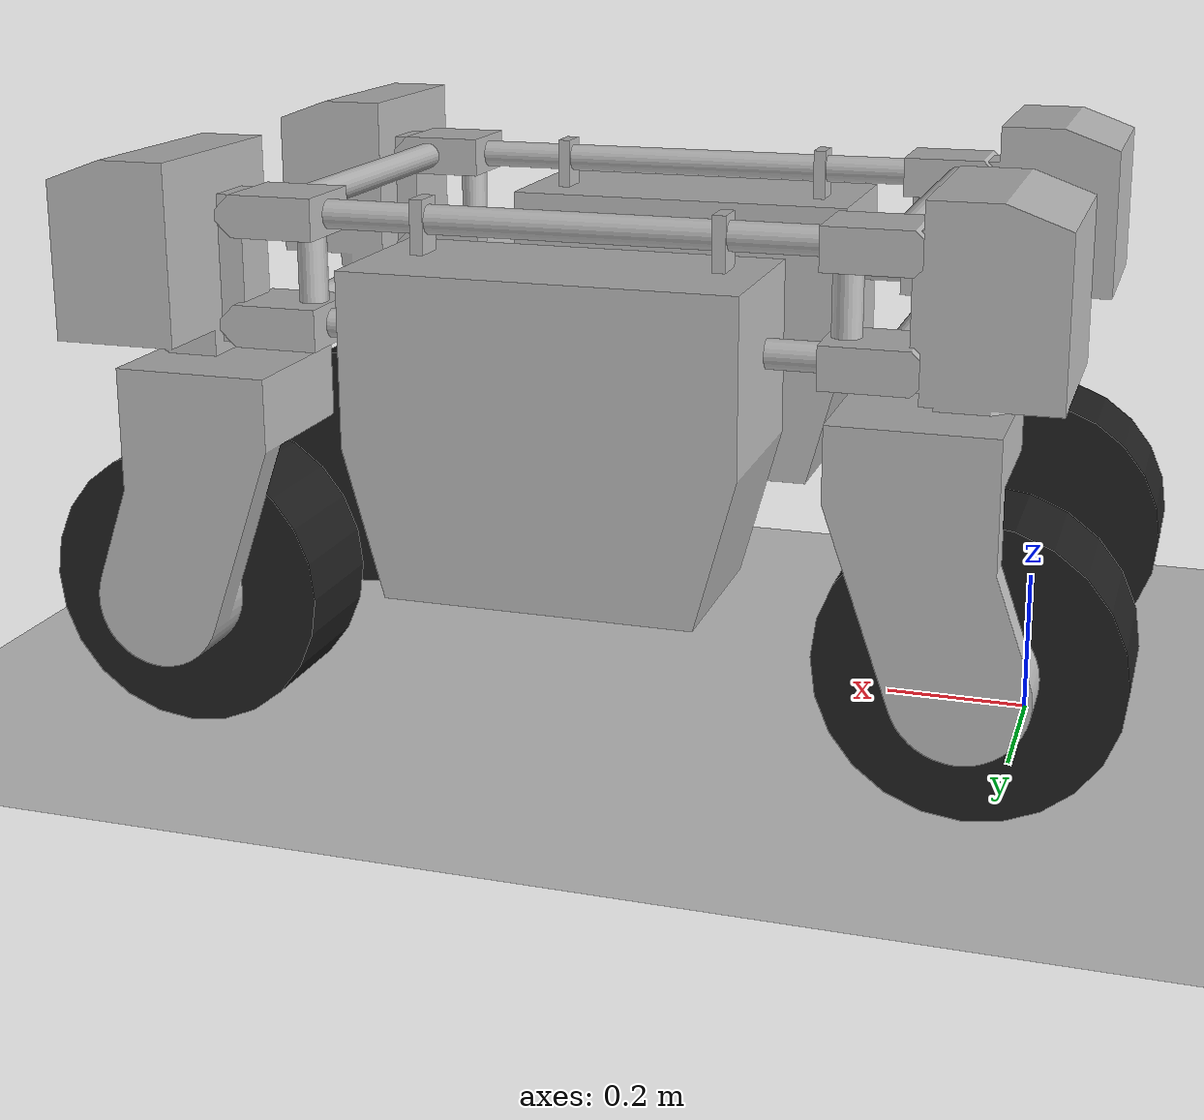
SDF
<sdf version="1.6">
 <world name="default">
  <light name="sun" type="directional">
   <pose>0 0 10 0 -0 0</pose>
   <diffuse>0.8 0.8 0.8 1</diffuse>
   <specular>0.1 0.1 0.1 1</specular>
   <attenuation>
    <range>1000</range>
    <constant>0.9</constant>
    <linear>0.01</linear>
    <quadratic>0.001</quadratic>
   </attenuation>
   <direction>-0.5 0.5 -1</direction>
  </light>
  <model name="ground_plane">
   <static>1</static>
   <link name="link">
    <collision name="collision">
     <geometry><plane><normal>0 0 1</normal><size>100 100</size></plane></geometry>
     <surface><friction><ode><mu>100</mu><mu2>50</mu2></ode></friction></surface>
    </collision>
    <visual name="visual">
     <cast_shadows>0</cast_shadows>
     <geometry><plane><normal>0 0 1</normal><size>100 100</size></plane></geometry>
     <material>
      <script><uri>file://media/materials/scripts/gazebo.material</uri><name>Gazebo/Grey</name></script>
     </material>
    </visual>
   </link>
  </model>
  <gravity>0 0 -9.8</gravity>
  <magnetic_field>6e-06 2.3e-05 -4.2e-05</magnetic_field>
  <atmosphere type="adiabatic"/>
  <physics name="default_physics" default="0" type="ode">
   <max_step_size>0.001</max_step_size>
   <real_time_factor>1</real_time_factor>
   <real_time_update_rate>1000</real_time_update_rate>
  </physics>
  <scene><ambient>0.4 0.4 0.4 1</ambient><background>0.7 0.7 0.7 1</background><shadows>1</shadows></scene>
  <spherical_coordinates>
   <surface_model>EARTH_WGS84</surface_model>
   <latitude_deg>0</latitude_deg>
   <longitude_deg>0</longitude_deg>
   <elevation>0</elevation>
   <heading_deg>0</heading_deg>
  </spherical_coordinates>
  <model name="thorvald_ii">
   <link name="base_link">
    <inertial>
     <pose>-0 0 0.521429 0 -0 0</pose>
     <mass>84</mass>
     <inertia>
      <ixx>33.8454</ixx>
      <ixy>1.9984e-14</ixy>
      <ixz>-1.73671e-16</ixz>
      <iyy>30.5515</iyy>
      <iyz>-5.86634e-15</iyz>
      <izz>37.106</izz>
     </inertia>
    </inertial>
    <collision name="base_link_fixed_joint_lump__top0_collision">
     <pose>-0.547 -0.3 0.65 0 -0 -3.14159</pose>
     <geometry>
      <mesh>
       <scale>1 1 1</scale>
       <uri>/home/vignesh/Thorvald/src/thorvald_model/meshes/tower_modules/DUMMY-TOWER-M.stl</uri>
      </mesh>
     </geometry>
    </collision>
    <collision name="base_link_fixed_joint_lump__top1_collision_1">
     <pose>0.547 -0.3 0.65 0 -0 0</pose>
     <geometry>
      <mesh>
       <scale>1 1 1</scale>
       <uri>/home/vignesh/Thorvald/src/thorvald_model/meshes/tower_modules/DUMMY-TOWER-MIRROR-M.stl</uri>
      </mesh>
     </geometry>
    </collision>
    <collision name="base_link_fixed_joint_lump__top2_collision_2">
     <pose>0.547 0.3 0.65 0 -0 0</pose>
     <geometry>
      <mesh>
       <scale>1 1 1</scale>
       <uri>/home/vignesh/Thorvald/src/thorvald_model/meshes/tower_modules/DUMMY-TOWER-M.stl</uri>
      </mesh>
     </geometry>
    </collision>
    <collision name="base_link_fixed_joint_lump__top3_collision_3">
     <pose>-0.547 0.3 0.65 0 -0 -3.14159</pose>
     <geometry>
      <mesh>
       <scale>1 1 1</scale>
       <uri>/home/vignesh/Thorvald/src/thorvald_model/meshes/tower_modules/DUMMY-TOWER-MIRROR-M.stl</uri>
      </mesh>
     </geometry>
    </collision>
    <collision name="base_link_fixed_joint_lump__bat0_collision_4">
     <pose>0 0.3 0.72 0 -0 -3.14159</pose>
     <geometry>
      <mesh>
       <scale>1 1 1</scale>
       <uri>/home/vignesh/Thorvald/src/thorvald_model/meshes/bat_enc_modules/836586-1-DUMMY-RevA.stl</uri>
      </mesh>
     </geometry>
    </collision>
    <collision name="base_link_fixed_joint_lump__bat1_collision_5">
     <pose>0 -0.3 0.72 0 -0 0</pose>
     <geometry>
      <mesh>
       <scale>1 1 1</scale>
       <uri>/home/vignesh/Thorvald/src/thorvald_model/meshes/bat_enc_modules/836586-1-DUMMY-RevA.stl</uri>
      </mesh>
     </geometry>
    </collision>
    <collision name="base_link_fixed_joint_lump__pipe0_1_collision_6">
     <pose>0 -0.3 0.575 1.5708 0 -1.5708</pose>
     <geometry><cylinder><length>0.85</length><radius>0.02</radius></cylinder></geometry>
    </collision>
    <collision name="base_link_fixed_joint_lump__pipe0_2_collision_7">
     <pose>0 -0.3 0.725 1.5708 0 -1.5708</pose>
     <geometry><cylinder><length>0.85</length><radius>0.02</radius></cylinder></geometry>
    </collision>
    <collision name="base_link_fixed_joint_lump__pipe1_1_collision_8">
     <pose>0.425 0 0.575 1.5708 -0 0</pose>
     <geometry><cylinder><length>0.6</length><radius>0.02</radius></cylinder></geometry>
    </collision>
    <collision name="base_link_fixed_joint_lump__pipe1_2_collision_9">
     <pose>0.425 0 0.725 1.5708 -0 0</pose>
     <geometry><cylinder><length>0.6</length><radius>0.02</radius></cylinder></geometry>
    </collision>
    <collision name="base_link_fixed_joint_lump__pipe2_1_collision_10">
     <pose>0 0.3 0.575 1.5708 -0 1.5708</pose>
     <geometry><cylinder><length>0.85</length><radius>0.02</radius></cylinder></geometry>
    </collision>
    <collision name="base_link_fixed_joint_lump__pipe2_2_collision_11">
     <pose>0 0.3 0.725 1.5708 -0 1.5708</pose>
     <geometry><cylinder><length>0.85</length><radius>0.02</radius></cylinder></geometry>
    </collision>
    <collision name="base_link_fixed_joint_lump__pipe3_1_collision_12">
     <pose>-0.425 0 0.575 1.5708 -0 3.14159</pose>
     <geometry><cylinder><length>0.6</length><radius>0.02</radius></cylinder></geometry>
    </collision>
    <collision name="base_link_fixed_joint_lump__pipe3_2_collision_13">
     <pose>-0.425 0 0.725 1.5708 -0 3.14159</pose>
     <geometry><cylinder><length>0.6</length><radius>0.02</radius></cylinder></geometry>
    </collision>
    <visual name="base_link_fixed_joint_lump__top0_visual">
     <pose>-0.547 -0.3 0.65 0 -0 -3.14159</pose>
     <geometry>
      <mesh>
       <scale>1 1 1</scale>
       <uri>/home/vignesh/Thorvald/src/thorvald_model/meshes/tower_modules/DUMMY-TOWER-M.stl</uri>
      </mesh>
     </geometry>
    </visual>
    <visual name="base_link_fixed_joint_lump__top1_visual_1">
     <pose>0.547 -0.3 0.65 0 -0 0</pose>
     <geometry>
      <mesh>
       <scale>1 1 1</scale>
       <uri>/home/vignesh/Thorvald/src/thorvald_model/meshes/tower_modules/DUMMY-TOWER-MIRROR-M.stl</uri>
      </mesh>
     </geometry>
    </visual>
    <visual name="base_link_fixed_joint_lump__top2_visual_2">
     <pose>0.547 0.3 0.65 0 -0 0</pose>
     <geometry>
      <mesh>
       <scale>1 1 1</scale>
       <uri>/home/vignesh/Thorvald/src/thorvald_model/meshes/tower_modules/DUMMY-TOWER-M.stl</uri>
      </mesh>
     </geometry>
    </visual>
    <visual name="base_link_fixed_joint_lump__top3_visual_3">
     <pose>-0.547 0.3 0.65 0 -0 -3.14159</pose>
     <geometry>
      <mesh>
       <scale>1 1 1</scale>
       <uri>/home/vignesh/Thorvald/src/thorvald_model/meshes/tower_modules/DUMMY-TOWER-MIRROR-M.stl</uri>
      </mesh>
     </geometry>
    </visual>
    <visual name="base_link_fixed_joint_lump__bat0_visual_4">
     <pose>0 0.3 0.72 0 -0 -3.14159</pose>
     <geometry>
      <mesh>
       <scale>1 1 1</scale>
       <uri>/home/vignesh/Thorvald/src/thorvald_model/meshes/bat_enc_modules/836586-1-DUMMY-RevA.stl</uri>
      </mesh>
     </geometry>
    </visual>
    <visual name="base_link_fixed_joint_lump__bat1_visual_5">
     <pose>0 -0.3 0.72 0 -0 0</pose>
     <geometry>
      <mesh>
       <scale>1 1 1</scale>
       <uri>/home/vignesh/Thorvald/src/thorvald_model/meshes/bat_enc_modules/836586-1-DUMMY-RevA.stl</uri>
      </mesh>
     </geometry>
    </visual>
    <visual name="base_link_fixed_joint_lump__corner0_visual_6">
     <pose>-0.368 -0.3 0.65 0 -0 3.14159</pose>
     <geometry><cylinder><length>0.15</length><radius>0.02</radius></cylinder></geometry>
    </visual>
    <visual name="base_link_fixed_joint_lump__corner0_1_visual_7">
     <pose>-0.425 -0.3 0.575 0 -0 3.14159</pose>
     <geometry>
      <mesh>
       <scale>1 1 1</scale>
       <uri>/home/vignesh/Thorvald/src/thorvald_model/meshes/clamps/DUMMY-T-BRACKET.stl</uri>
      </mesh>
     </geometry>
    </visual>
    <visual name="base_link_fixed_joint_lump__corner0_2_visual_8">
     <pose>-0.425 -0.3 0.725 0 -0 3.14159</pose>
     <geometry>
      <mesh>
       <scale>1 1 1</scale>
       <uri>/home/vignesh/Thorvald/src/thorvald_model/meshes/clamps/DUMMY-T-BRACKET.stl</uri>
      </mesh>
     </geometry>
    </visual>
    <visual name="base_link_fixed_joint_lump__corner1_visual_9">
     <pose>0.368 -0.3 0.65 0 -0 0</pose>
     <geometry><cylinder><length>0.15</length><radius>0.02</radius></cylinder></geometry>
    </visual>
    <visual name="base_link_fixed_joint_lump__corner1_1_visual_10">
     <pose>0.425 -0.3 0.575 0 -0 0</pose>
     <geometry>
      <mesh>
       <scale>1 1 1</scale>
       <uri>/home/vignesh/Thorvald/src/thorvald_model/meshes/clamps/DUMMY-T-BRACKET.stl</uri>
      </mesh>
     </geometry>
    </visual>
    <visual name="base_link_fixed_joint_lump__corner1_2_visual_11">
     <pose>0.425 -0.3 0.725 0 -0 0</pose>
     <geometry>
      <mesh>
       <scale>1 1 1</scale>
       <uri>/home/vignesh/Thorvald/src/thorvald_model/meshes/clamps/DUMMY-T-BRACKET.stl</uri>
      </mesh>
     </geometry>
    </visual>
    <visual name="base_link_fixed_joint_lump__corner2_visual_12">
     <pose>0.368 0.3 0.65 0 -0 0</pose>
     <geometry><cylinder><length>0.15</length><radius>0.02</radius></cylinder></geometry>
    </visual>
    <visual name="base_link_fixed_joint_lump__corner2_1_visual_13">
     <pose>0.425 0.3 0.575 0 -0 0</pose>
     <geometry>
      <mesh>
       <scale>1 1 1</scale>
       <uri>/home/vignesh/Thorvald/src/thorvald_model/meshes/clamps/DUMMY-T-BRACKET.stl</uri>
      </mesh>
     </geometry>
    </visual>
    <visual name="base_link_fixed_joint_lump__corner2_2_visual_14">
     <pose>0.425 0.3 0.725 0 -0 0</pose>
     <geometry>
      <mesh>
       <scale>1 1 1</scale>
       <uri>/home/vignesh/Thorvald/src/thorvald_model/meshes/clamps/DUMMY-T-BRACKET.stl</uri>
      </mesh>
     </geometry>
    </visual>
    <visual name="base_link_fixed_joint_lump__corner3_visual_15">
     <pose>-0.368 0.3 0.65 0 -0 3.14159</pose>
     <geometry><cylinder><length>0.15</length><radius>0.02</radius></cylinder></geometry>
    </visual>
    <visual name="base_link_fixed_joint_lump__corner3_1_visual_16">
     <pose>-0.425 0.3 0.575 0 -0 3.14159</pose>
     <geometry>
      <mesh>
       <scale>1 1 1</scale>
       <uri>/home/vignesh/Thorvald/src/thorvald_model/meshes/clamps/DUMMY-T-BRACKET.stl</uri>
      </mesh>
     </geometry>
    </visual>
    <visual name="base_link_fixed_joint_lump__corner3_2_visual_17">
     <pose>-0.425 0.3 0.725 0 -0 3.14159</pose>
     <geometry>
      <mesh>
       <scale>1 1 1</scale>
       <uri>/home/vignesh/Thorvald/src/thorvald_model/meshes/clamps/DUMMY-T-BRACKET.stl</uri>
      </mesh>
     </geometry>
    </visual>
    <visual name="base_link_fixed_joint_lump__pipe0_1_visual_18">
     <pose>0 -0.3 0.575 1.5708 0 -1.5708</pose>
     <geometry><cylinder><length>0.85</length><radius>0.02</radius></cylinder></geometry>
    </visual>
    <visual name="base_link_fixed_joint_lump__pipe0_2_visual_19">
     <pose>0 -0.3 0.725 1.5708 0 -1.5708</pose>
     <geometry><cylinder><length>0.85</length><radius>0.02</radius></cylinder></geometry>
    </visual>
    <visual name="base_link_fixed_joint_lump__pipe1_1_visual_20">
     <pose>0.425 0 0.575 1.5708 -0 0</pose>
     <geometry><cylinder><length>0.6</length><radius>0.02</radius></cylinder></geometry>
    </visual>
    <visual name="base_link_fixed_joint_lump__pipe1_2_visual_21">
     <pose>0.425 0 0.725 1.5708 -0 0</pose>
     <geometry><cylinder><length>0.6</length><radius>0.02</radius></cylinder></geometry>
    </visual>
    <visual name="base_link_fixed_joint_lump__pipe2_1_visual_22">
     <pose>0 0.3 0.575 1.5708 -0 1.5708</pose>
     <geometry><cylinder><length>0.85</length><radius>0.02</radius></cylinder></geometry>
    </visual>
    <visual name="base_link_fixed_joint_lump__pipe2_2_visual_23">
     <pose>0 0.3 0.725 1.5708 -0 1.5708</pose>
     <geometry><cylinder><length>0.85</length><radius>0.02</radius></cylinder></geometry>
    </visual>
    <visual name="base_link_fixed_joint_lump__pipe3_1_visual_24">
     <pose>-0.425 0 0.575 1.5708 -0 3.14159</pose>
     <geometry><cylinder><length>0.6</length><radius>0.02</radius></cylinder></geometry>
    </visual>
    <visual name="base_link_fixed_joint_lump__pipe3_2_visual_25">
     <pose>-0.425 0 0.725 1.5708 -0 3.14159</pose>
     <geometry><cylinder><length>0.6</length><radius>0.02</radius></cylinder></geometry>
    </visual>
   </link>
   <link name="leg0">
    <pose>-0.547 -0.3 0.2 0 -0 0</pose>
    <inertial>
     <mass>1</mass>
     <inertia><ixx>1</ixx><ixy>0</ixy><ixz>0</ixz><iyy>1</iyy><iyz>0</iyz><izz>1</izz></inertia>
    </inertial>
    <collision name="leg0_collision">
     <pose>0 0 0 0 -0 -3.14159</pose>
     <geometry>
      <mesh>
       <scale>1 1 1</scale>
       <uri>/home/vignesh/Thorvald/src/thorvald_model/meshes/drive_modules/836745-5-DUMMY-RevA.stl</uri>
      </mesh>
     </geometry>
    </collision>
    <visual name="leg0_visual">
     <pose>0 0 0 0 -0 -3.14159</pose>
     <geometry>
      <mesh>
       <scale>1 1 1</scale>
       <uri>/home/vignesh/Thorvald/src/thorvald_model/meshes/drive_modules/836745-5-DUMMY-RevA.stl</uri>
      </mesh>
     </geometry>
    </visual>
   </link>
   <joint name="steering0" type="revolute">
    <child>leg0</child>
    <parent>base_link</parent>
    <axis>
     <xyz>0 0 1</xyz>
     <limit><lower>-1e+16</lower><upper>1e+16</upper></limit>
     <dynamics><spring_reference>0</spring_reference><spring_stiffness>0</spring_stiffness></dynamics>
     <use_parent_model_frame>1</use_parent_model_frame>
    </axis>
   </joint>
   <link name="wheel0_link">
    <pose>-0.547 -0.3 0.2 -1.5708 0 0</pose>
    <inertial>
     <mass>1</mass>
     <inertia><ixx>1</ixx><ixy>0</ixy><ixz>0</ixz><iyy>1</iyy><iyz>0</iyz><izz>1</izz></inertia>
    </inertial>
    <collision name="wheel0_link_collision">
     <geometry><cylinder><length>0.16</length><radius>0.2</radius></cylinder></geometry>
    </collision>
    <visual name="wheel0_link_visual">
     <geometry><cylinder><length>0.16</length><radius>0.2</radius></cylinder></geometry>
     <material>
      <script><name>Gazebo/Black</name><uri>file://media/materials/scripts/gazebo.material</uri></script>
     </material>
    </visual>
   </link>
   <joint name="wheel0" type="revolute">
    <child>wheel0_link</child>
    <parent>leg0</parent>
    <axis>
     <xyz>0 1 0</xyz>
     <limit><lower>-1e+16</lower><upper>1e+16</upper></limit>
     <dynamics><spring_reference>0</spring_reference><spring_stiffness>0</spring_stiffness></dynamics>
     <use_parent_model_frame>1</use_parent_model_frame>
    </axis>
   </joint>
   <link name="leg1">
    <pose>0.547 -0.3 0.2 0 -0 0</pose>
    <inertial>
     <mass>1</mass>
     <inertia><ixx>1</ixx><ixy>0</ixy><ixz>0</ixz><iyy>1</iyy><iyz>0</iyz><izz>1</izz></inertia>
    </inertial>
    <collision name="leg1_collision">
     <geometry>
      <mesh>
       <scale>1 1 1</scale>
       <uri>/home/vignesh/Thorvald/src/thorvald_model/meshes/drive_modules/836745-5-DUMMY-MIRROR-RevA.stl</uri>
      </mesh>
     </geometry>
    </collision>
    <visual name="leg1_visual">
     <geometry>
      <mesh>
       <scale>1 1 1</scale>
       <uri>/home/vignesh/Thorvald/src/thorvald_model/meshes/drive_modules/836745-5-DUMMY-MIRROR-RevA.stl</uri>
      </mesh>
     </geometry>
    </visual>
   </link>
   <joint name="steering1" type="revolute">
    <child>leg1</child>
    <parent>base_link</parent>
    <axis>
     <xyz>0 0 1</xyz>
     <limit><lower>-1e+16</lower><upper>1e+16</upper></limit>
     <dynamics><spring_reference>0</spring_reference><spring_stiffness>0</spring_stiffness></dynamics>
     <use_parent_model_frame>1</use_parent_model_frame>
    </axis>
   </joint>
   <link name="wheel1_link">
    <pose>0.547 -0.3 0.2 -1.5708 0 0</pose>
    <inertial>
     <mass>1</mass>
     <inertia><ixx>1</ixx><ixy>0</ixy><ixz>0</ixz><iyy>1</iyy><iyz>0</iyz><izz>1</izz></inertia>
    </inertial>
    <collision name="wheel1_link_collision">
     <geometry><cylinder><length>0.16</length><radius>0.2</radius></cylinder></geometry>
    </collision>
    <visual name="wheel1_link_visual">
     <geometry><cylinder><length>0.16</length><radius>0.2</radius></cylinder></geometry>
     <material>
      <script><name>Gazebo/Black</name><uri>file://media/materials/scripts/gazebo.material</uri></script>
     </material>
    </visual>
   </link>
   <joint name="wheel1" type="revolute">
    <child>wheel1_link</child>
    <parent>leg1</parent>
    <axis>
     <xyz>0 1 0</xyz>
     <limit><lower>-1e+16</lower><upper>1e+16</upper></limit>
     <dynamics><spring_reference>0</spring_reference><spring_stiffness>0</spring_stiffness></dynamics>
     <use_parent_model_frame>1</use_parent_model_frame>
    </axis>
   </joint>
   <link name="leg2">
    <pose>0.547 0.3 0.2 0 -0 0</pose>
    <inertial>
     <mass>1</mass>
     <inertia><ixx>1</ixx><ixy>0</ixy><ixz>0</ixz><iyy>1</iyy><iyz>0</iyz><izz>1</izz></inertia>
    </inertial>
    <collision name="leg2_collision">
     <geometry>
      <mesh>
       <scale>1 1 1</scale>
       <uri>/home/vignesh/Thorvald/src/thorvald_model/meshes/drive_modules/836745-5-DUMMY-RevA.stl</uri>
      </mesh>
     </geometry>
    </collision>
    <visual name="leg2_visual">
     <geometry>
      <mesh>
       <scale>1 1 1</scale>
       <uri>/home/vignesh/Thorvald/src/thorvald_model/meshes/drive_modules/836745-5-DUMMY-RevA.stl</uri>
      </mesh>
     </geometry>
    </visual>
   </link>
   <joint name="steering2" type="revolute">
    <child>leg2</child>
    <parent>base_link</parent>
    <axis>
     <xyz>0 0 1</xyz>
     <limit><lower>-1e+16</lower><upper>1e+16</upper></limit>
     <dynamics><spring_reference>0</spring_reference><spring_stiffness>0</spring_stiffness></dynamics>
     <use_parent_model_frame>1</use_parent_model_frame>
    </axis>
   </joint>
   <link name="wheel2_link">
    <pose>0.547 0.3 0.2 -1.5708 0 0</pose>
    <inertial>
     <mass>1</mass>
     <inertia><ixx>1</ixx><ixy>0</ixy><ixz>0</ixz><iyy>1</iyy><iyz>0</iyz><izz>1</izz></inertia>
    </inertial>
    <collision name="wheel2_link_collision">
     <geometry><cylinder><length>0.16</length><radius>0.2</radius></cylinder></geometry>
    </collision>
    <visual name="wheel2_link_visual">
     <geometry><cylinder><length>0.16</length><radius>0.2</radius></cylinder></geometry>
     <material>
      <script><name>Gazebo/Black</name><uri>file://media/materials/scripts/gazebo.material</uri></script>
     </material>
    </visual>
   </link>
   <joint name="wheel2" type="revolute">
    <child>wheel2_link</child>
    <parent>leg2</parent>
    <axis>
     <xyz>0 1 0</xyz>
     <limit><lower>-1e+16</lower><upper>1e+16</upper></limit>
     <dynamics><spring_reference>0</spring_reference><spring_stiffness>0</spring_stiffness></dynamics>
     <use_parent_model_frame>1</use_parent_model_frame>
    </axis>
   </joint>
   <link name="leg3">
    <pose>-0.547 0.3 0.2 0 -0 0</pose>
    <inertial>
     <mass>1</mass>
     <inertia><ixx>1</ixx><ixy>0</ixy><ixz>0</ixz><iyy>1</iyy><iyz>0</iyz><izz>1</izz></inertia>
    </inertial>
    <collision name="leg3_collision">
     <pose>0 0 0 0 -0 -3.14159</pose>
     <geometry>
      <mesh>
       <scale>1 1 1</scale>
       <uri>/home/vignesh/Thorvald/src/thorvald_model/meshes/drive_modules/836745-5-DUMMY-MIRROR-RevA.stl</uri>
      </mesh>
     </geometry>
    </collision>
    <visual name="leg3_visual">
     <pose>0 0 0 0 -0 -3.14159</pose>
     <geometry>
      <mesh>
       <scale>1 1 1</scale>
       <uri>/home/vignesh/Thorvald/src/thorvald_model/meshes/drive_modules/836745-5-DUMMY-MIRROR-RevA.stl</uri>
      </mesh>
     </geometry>
    </visual>
   </link>
   <joint name="steering3" type="revolute">
    <child>leg3</child>
    <parent>base_link</parent>
    <axis>
     <xyz>0 0 1</xyz>
     <limit><lower>-1e+16</lower><upper>1e+16</upper></limit>
     <dynamics><spring_reference>0</spring_reference><spring_stiffness>0</spring_stiffness></dynamics>
     <use_parent_model_frame>1</use_parent_model_frame>
    </axis>
   </joint>
   <link name="wheel3_link">
    <pose>-0.547 0.3 0.2 -1.5708 0 0</pose>
    <inertial>
     <mass>1</mass>
     <inertia><ixx>1</ixx><ixy>0</ixy><ixz>0</ixz><iyy>1</iyy><iyz>0</iyz><izz>1</izz></inertia>
    </inertial>
    <collision name="wheel3_link_collision">
     <geometry><cylinder><length>0.16</length><radius>0.2</radius></cylinder></geometry>
    </collision>
    <visual name="wheel3_link_visual">
     <geometry><cylinder><length>0.16</length><radius>0.2</radius></cylinder></geometry>
     <material>
      <script><name>Gazebo/Black</name><uri>file://media/materials/scripts/gazebo.material</uri></script>
     </material>
    </visual>
   </link>
   <joint name="wheel3" type="revolute">
    <child>wheel3_link</child>
    <parent>leg3</parent>
    <axis>
     <xyz>0 1 0</xyz>
     <limit><lower>-1e+16</lower><upper>1e+16</upper></limit>
     <dynamics><spring_reference>0</spring_reference><spring_stiffness>0</spring_stiffness></dynamics>
     <use_parent_model_frame>1</use_parent_model_frame>
    </axis>
   </joint>
   <static>0</static>
   <plugin name="thorvald_gazebo_plugins" filename="libthorvald_gazebo_plugins.so">
    <alwaysOn>true</alwaysOn>
    <updateRate>20</updateRate>
    <commandTopic>base_state</commandTopic>
    <odometryTopic>odometry/gazebo</odometryTopic>
    <odometryFrame>odom</odometryFrame>
    <robotBaseFrame>base_link</robotBaseFrame>
    <steering0>steering0</steering0>
    <steering1>steering1</steering1>
    <steering2>steering2</steering2>
    <steering3>steering3</steering3>
    <steering4>steering4</steering4>
    <steering5>steering5</steering5>
    <steering6>steering6</steering6>
    <steering7>steering7</steering7>
    <steering8>steering8</steering8>
    <steering9>steering9</steering9>
    <steering10>steering10</steering10>
    <wheel0>wheel0</wheel0>
    <wheel1>wheel1</wheel1>
    <wheel2>wheel2</wheel2>
    <wheel3>wheel3</wheel3>
    <wheel4>wheel4</wheel4>
    <wheel5>wheel5</wheel5>
    <wheel6>wheel6</wheel6>
    <wheel7>wheel7</wheel7>
    <wheel8>wheel8</wheel8>
    <wheel9>wheel9</wheel9>
    <wheel10>wheel10</wheel10>
   </plugin>
   <pose>0.583403 0.009412 -1e-05 -1.8e-05 -0 -0.000858</pose>
  </model>
 </world>
</sdf>
